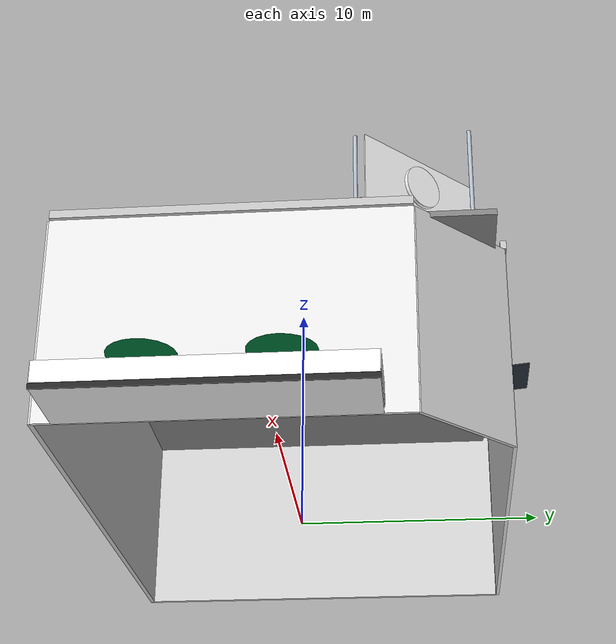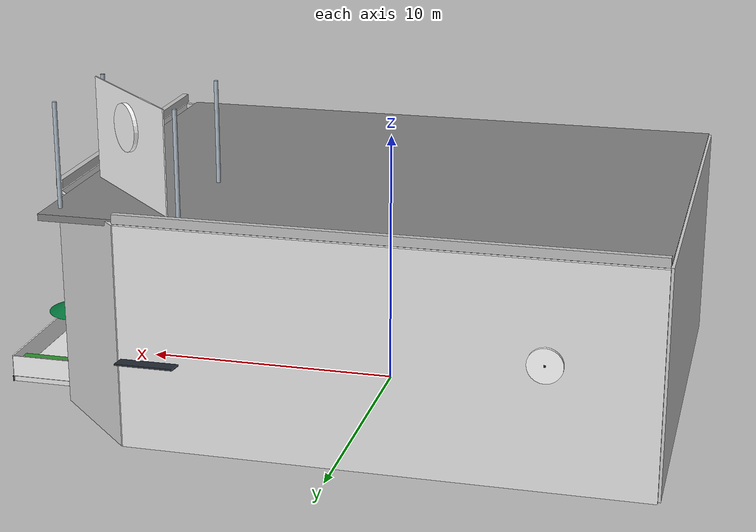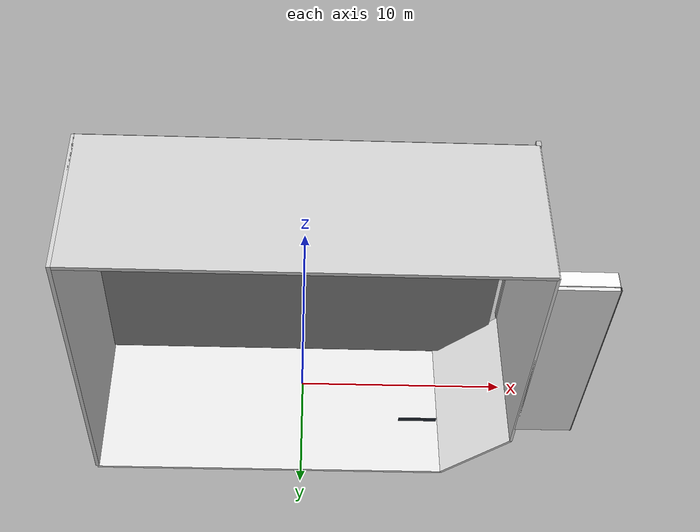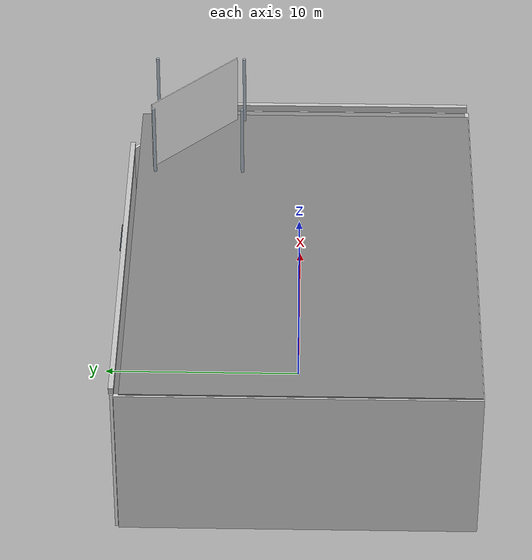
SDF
<?xml version="1.0" ?>
<sdf version="1.8">
  <model name="starbucks_building">
    <static>true</static>
    <link name="building_link">

      <!-- ==================== 1. 簡化剛體碰撞 (High-Performance Collisions) ==================== -->
      <!-- 主建物主體碰撞體 -->
      <collision name="main_bldg_col">
        <pose>-1.5 -1.5 4.25 0 0 0</pose>
        <geometry>
          <box>
            <size>20.0 14.5 8.5</size>
          </box>
        </geometry>
      </collision>

      <!-- 戶外露天木棧平台碰撞體 (可供行人與機器人行走) -->
      <collision name="terrace_deck_col">
        <pose>13.0 -2.0 0.1 0 0 0</pose>
        <geometry>
          <box>
            <size>3.0 12.0 0.2</size>
          </box>
        </geometry>
        <surface>
          <friction>
            <ode>
              <mu>0.8</mu>
              <mu2>0.8</mu2>
            </ode>
          </friction>
        </surface>
      </collision>

      <!-- ==================== 2. 主建物外牆與高解析實景貼圖 (Real Photo Facades) ==================== -->
      <!-- (A) 臨關新路立面 (West Facade: 雙扇推門、陳列大櫥窗、STARBUCKS黑橫幅、黑木護牆板、2F Bagel網球遮陽棚) -->
      <visual name="west_facade_vis">
        <pose>-1.75 8.75 4.25 0 0 0</pose>
        <geometry>
          <box>
            <size>19.5 0.15 8.5</size>
          </box>
        </geometry>
        <material>
          <diffuse>0.9 0.9 0.9 1</diffuse>
          <pbr>
            <metal>
              <albedo_map>model://starbucks_building/materials/textures/sbux_west_facade.png</albedo_map>
              <roughness>0.4</roughness>
              <metalness>0.1</metalness>
            </metal>
          </pbr>
        </material>
      </visual>

      <!-- (B) 臨關新二街立面 (North Facade: 連續落地大玻璃窗、STARBUCKS黑條紋看板、2F Bagel網球工作室遮陽棚) -->
      <visual name="north_facade_vis">
        <pose>11.5 -1.75 4.25 0 0 0</pose>
        <geometry>
          <box>
            <size>0.15 14.0 8.5</size>
          </box>
        </geometry>
        <material>
          <diffuse>0.9 0.9 0.9 1</diffuse>
          <pbr>
            <metal>
              <albedo_map>model://starbucks_building/materials/textures/sbux_north_facade.png</albedo_map>
              <roughness>0.4</roughness>
              <metalness>0.1</metalness>
            </metal>
          </pbr>
        </material>
      </visual>

      <!-- (C) 45度導角轉角立面 (45-degree Chamfered Corner: 抿石子轉角立柱與黑底銅邊飾條) -->
      <visual name="corner_chamfer_vis">
        <pose>9.75 7.0 4.25 0 0 -0.785398</pose>
        <geometry>
          <box>
            <size>4.95 0.15 8.5</size>
          </box>
        </geometry>
        <material>
          <diffuse>0.85 0.85 0.85 1</diffuse>
          <pbr>
            <metal>
              <albedo_map>model://starbucks_building/materials/textures/sbux_corner_chamfer.png</albedo_map>
              <roughness>0.5</roughness>
            </metal>
          </pbr>
        </material>
      </visual>

      <!-- (D) 門口上方輕型金屬雨遮 (Entrance Canopy) -->
      <visual name="entrance_canopy">
        <pose>6.8 8.95 3.45 0.1 0 0</pose>
        <geometry>
          <box>
            <size>2.2 1.1 0.06</size>
          </box>
        </geometry>
        <material>
          <ambient>0.1 0.12 0.15 0.9</ambient>
          <diffuse>0.15 0.18 0.22 0.9</diffuse>
        </material>
      </visual>

      <!-- (E) 南側緊鄰康是美隔牆 (South Wall bordering Cosmed) -->
      <visual name="south_wall_vis">
        <pose>-11.5 -0.1 4.25 0 0 0</pose>
        <geometry>
          <box>
            <size>0.2 17.5 8.5</size>
          </box>
        </geometry>
        <material>
          <diffuse>0.8 0.8 0.8 1</diffuse>
          <pbr>
            <metal>
              <albedo_map>model://starbucks_building/materials/textures/sbux_pebble_concrete.png</albedo_map>
              <roughness>0.7</roughness>
            </metal>
          </pbr>
        </material>
      </visual>

      <!-- (F) 東側後方背牆 (East Rear Wall facing Back Alley) -->
      <visual name="east_rear_wall_vis">
        <pose>0 -8.75 4.25 0 0 0</pose>
        <geometry>
          <box>
            <size>23.0 0.2 8.5</size>
          </box>
        </geometry>
        <material>
          <diffuse>0.8 0.8 0.8 1</diffuse>
          <pbr>
            <metal>
              <albedo_map>model://starbucks_building/materials/textures/sbux_pebble_concrete.png</albedo_map>
              <roughness>0.7</roughness>
            </metal>
          </pbr>
        </material>
      </visual>

      <!-- (G) 屋頂樓板與女兒牆 (Rooftop Slab & Parapet) -->
      <visual name="roof_slab">
        <pose>-0.25 -0.2 8.45 0 0 0</pose>
        <geometry>
          <box>
            <size>22.5 17.2 0.25</size>
          </box>
        </geometry>
        <material>
          <ambient>0.45 0.45 0.45 1</ambient>
          <diffuse>0.5 0.5 0.5 1</diffuse>
        </material>
      </visual>
      <visual name="roof_parapet_w">
        <pose>-1.75 8.75 8.75 0 0 0</pose>
        <geometry>
          <box>
            <size>19.5 0.25 0.35</size>
          </box>
        </geometry>
        <material>
          <diffuse>0.75 0.75 0.75 1</diffuse>
          <pbr>
            <metal>
              <albedo_map>model://starbucks_building/materials/textures/sbux_pebble_concrete.png</albedo_map>
            </metal>
          </pbr>
        </material>
      </visual>
      <visual name="roof_parapet_n">
        <pose>11.5 -1.75 8.75 0 0 0</pose>
        <geometry>
          <box>
            <size>0.25 14.0 0.35</size>
          </box>
        </geometry>
        <material>
          <diffuse>0.75 0.75 0.75 1</diffuse>
          <pbr>
            <metal>
              <albedo_map>model://starbucks_building/materials/textures/sbux_pebble_concrete.png</albedo_map>
            </metal>
          </pbr>
        </material>
      </visual>

      <!-- ==================== 3. 臨關新路側懸星巴克雙尾美人魚圓形標誌 (Mounted Siren Medallion) ==================== -->
      <visual name="siren_sign_arm">
        <pose>-7.5 8.9 4.8 0 0 0</pose>
        <geometry>
          <box>
            <size>0.08 0.35 0.08</size>
          </box>
        </geometry>
        <material>
          <ambient>0.1 0.1 0.1 1</ambient>
          <diffuse>0.15 0.15 0.15 1</diffuse>
        </material>
      </visual>
      <visual name="siren_medallion_disc">
        <pose>-7.5 9.0 4.8 1.5707963 0 0</pose>
        <geometry>
          <cylinder>
            <radius>0.65</radius>
            <length>0.12</length>
          </cylinder>
        </geometry>
        <material>
          <diffuse>1 1 1 1</diffuse>
          <emissive>0.0 0.45 0.22 1</emissive>
          <pbr>
            <metal>
              <albedo_map>model://starbucks_building/materials/textures/sbux_siren_logo.png</albedo_map>
              <roughness>0.3</roughness>
            </metal>
          </pbr>
        </material>
      </visual>

      <!-- ==================== 4. 北側關新二街木棧露天座與木柵圍欄 (Outdoor Terrace & Wood Slats Fence) ==================== -->
      <!-- 戶外木棧地板 (Timber Deck) -->
      <visual name="terrace_deck_vis">
        <pose>13.0 -2.0 0.1 0 0 0</pose>
        <geometry>
          <box>
            <size>3.0 12.0 0.2</size>
          </box>
        </geometry>
        <material>
          <diffuse>0.9 0.9 0.9 1</diffuse>
          <pbr>
            <metal>
              <albedo_map>model://starbucks_building/materials/textures/sbux_wood_deck.png</albedo_map>
              <roughness>0.6</roughness>
            </metal>
          </pbr>
        </material>
      </visual>

      <!-- 黑色金屬基座圍邊 (Black Metal Edge Beam) -->
      <visual name="terrace_edge_beam">
        <pose>14.52 -2.0 0.1 0 0 0</pose>
        <geometry>
          <box>
            <size>0.06 12.05 0.22</size>
          </box>
        </geometry>
        <material>
          <ambient>0.1 0.1 0.1 1</ambient>
          <diffuse>0.15 0.15 0.15 1</diffuse>
        </material>
      </visual>

      <!-- 木柵格欄杆主圍牆 (外側臨關新二街, Slat Fence Outer) -->
      <visual name="terrace_fence_outer">
        <pose>14.5 -2.0 0.65 0 0 0</pose>
        <geometry>
          <box>
            <size>0.06 12.0 0.85</size>
          </box>
        </geometry>
        <material>
          <diffuse>0.95 0.95 0.95 1</diffuse>
          <pbr>
            <metal>
              <albedo_map>model://starbucks_building/materials/textures/sbux_terrace_fence.png</albedo_map>
              <roughness>0.5</roughness>
            </metal>
          </pbr>
        </material>
      </visual>

      <!-- 木柵格欄杆北側側圍 (Slat Fence North End) -->
      <visual name="terrace_fence_north">
        <pose>13.0 4.0 0.65 0 0 0</pose>
        <geometry>
          <box>
            <size>3.0 0.06 0.85</size>
          </box>
        </geometry>
        <material>
          <diffuse>0.95 0.95 0.95 1</diffuse>
          <pbr>
            <metal>
              <albedo_map>model://starbucks_building/materials/textures/sbux_terrace_fence.png</albedo_map>
              <roughness>0.5</roughness>
            </metal>
          </pbr>
        </material>
      </visual>

      <!-- 木柵格欄杆南側側圍 (Slat Fence South End) -->
      <visual name="terrace_fence_south">
        <pose>13.0 -8.0 0.65 0 0 0</pose>
        <geometry>
          <box>
            <size>3.0 0.06 0.85</size>
          </box>
        </geometry>
        <material>
          <diffuse>0.95 0.95 0.95 1</diffuse>
          <pbr>
            <metal>
              <albedo_map>model://starbucks_building/materials/textures/sbux_terrace_fence.png</albedo_map>
              <roughness>0.5</roughness>
            </metal>
          </pbr>
        </material>
      </visual>

      <!-- 露天座深木色景觀植栽槽 (North Planter Box) -->
      <visual name="planter_box_north">
        <pose>13.0 3.6 0.45 0 0 0</pose>
        <geometry>
          <box>
            <size>2.6 0.5 0.5</size>
          </box>
        </geometry>
        <material>
          <diffuse>0.85 0.85 0.85 1</diffuse>
          <pbr>
            <metal>
              <albedo_map>model://starbucks_building/materials/textures/sbux_dark_wood.png</albedo_map>
            </metal>
          </pbr>
        </material>
      </visual>
      <visual name="planter_plants_north">
        <pose>13.0 3.6 0.8 0 0 0</pose>
        <geometry>
          <box>
            <size>2.4 0.4 0.35</size>
          </box>
        </geometry>
        <material>
          <ambient>0.15 0.5 0.15 1</ambient>
          <diffuse>0.18 0.58 0.18 1</diffuse>
        </material>
      </visual>

      <!-- 露天咖啡座圓桌與遮陽傘 1 -->
      <visual name="cafe_table_1">
        <pose>13.0 -4.5 0.75 0 0 0</pose>
        <geometry>
          <cylinder>
            <radius>0.45</radius>
            <length>0.04</length>
          </cylinder>
        </geometry>
        <material>
          <ambient>0.2 0.15 0.1 1</ambient>
          <diffuse>0.25 0.2 0.15 1</diffuse>
        </material>
      </visual>
      <visual name="table_pole_1">
        <pose>13.0 -4.5 0.38 0 0 0</pose>
        <geometry>
          <cylinder>
            <radius>0.03</radius>
            <length>0.72</length>
          </cylinder>
        </geometry>
        <material>
          <ambient>0.1 0.1 0.1 1</ambient>
          <diffuse>0.15 0.15 0.15 1</diffuse>
        </material>
      </visual>
      <visual name="parasol_1">
        <pose>13.0 -4.5 2.2 0 0 0</pose>
        <geometry>
          <cone>
            <radius>1.3</radius>
            <length>0.6</length>
          </cone>
        </geometry>
        <material>
          <ambient>0.0 0.35 0.18 1</ambient>
          <diffuse>0.0 0.45 0.22 1</diffuse>
        </material>
      </visual>

      <!-- 露天咖啡座圓桌與遮陽傘 2 -->
      <visual name="cafe_table_2">
        <pose>13.0 0.5 0.75 0 0 0</pose>
        <geometry>
          <cylinder>
            <radius>0.45</radius>
            <length>0.04</length>
          </cylinder>
        </geometry>
        <material>
          <ambient>0.2 0.15 0.1 1</ambient>
          <diffuse>0.25 0.2 0.15 1</diffuse>
        </material>
      </visual>
      <visual name="table_pole_2">
        <pose>13.0 0.5 0.38 0 0 0</pose>
        <geometry>
          <cylinder>
            <radius>0.03</radius>
            <length>0.72</length>
          </cylinder>
        </geometry>
        <material>
          <ambient>0.1 0.1 0.1 1</ambient>
          <diffuse>0.15 0.15 0.15 1</diffuse>
        </material>
      </visual>
      <visual name="parasol_2">
        <pose>13.0 0.5 2.2 0 0 0</pose>
        <geometry>
          <cone>
            <radius>1.3</radius>
            <length>0.6</length>
          </cone>
        </geometry>
        <material>
          <ambient>0.0 0.35 0.18 1</ambient>
          <diffuse>0.0 0.45 0.22 1</diffuse>
        </material>
      </visual>

      <!-- ==================== 5. 屋頂鋼構廣告架與高聳美人魚圓形標誌 (Rooftop Steel Truss & Siren) ==================== -->
      <!-- 鋼構桁架實景透明貼圖主平面 (Facing Northwest Intersection) -->
      <visual name="roof_truss_plane">
        <pose>8.5 5.5 10.5 0 0 -0.785398</pose>
        <geometry>
          <box>
            <size>6.0 0.05 4.0</size>
          </box>
        </geometry>
        <material>
          <diffuse>1 1 1 1</diffuse>
          <pbr>
            <metal>
              <albedo_map>model://starbucks_building/materials/textures/sbux_roof_truss.png</albedo_map>
              <roughness>0.3</roughness>
            </metal>
          </pbr>
        </material>
      </visual>

      <!-- 桁架4根鍍鋅鋼立柱 (Steel Posts) -->
      <visual name="truss_post_1">
        <pose>6.0 3.0 10.5 0 0 0</pose>
        <geometry>
          <cylinder>
            <radius>0.08</radius>
            <length>4.0</length>
          </cylinder>
        </geometry>
        <material>
          <ambient>0.6 0.65 0.7 1</ambient>
          <diffuse>0.7 0.75 0.8 1</diffuse>
        </material>
      </visual>
      <visual name="truss_post_2">
        <pose>10.5 3.0 10.5 0 0 0</pose>
        <geometry>
          <cylinder>
            <radius>0.08</radius>
            <length>4.0</length>
          </cylinder>
        </geometry>
        <material>
          <ambient>0.6 0.65 0.7 1</ambient>
          <diffuse>0.7 0.75 0.8 1</diffuse>
        </material>
      </visual>
      <visual name="truss_post_3">
        <pose>6.0 7.5 10.5 0 0 0</pose>
        <geometry>
          <cylinder>
            <radius>0.08</radius>
            <length>4.0</length>
          </cylinder>
        </geometry>
        <material>
          <ambient>0.6 0.65 0.7 1</ambient>
          <diffuse>0.7 0.75 0.8 1</diffuse>
        </material>
      </visual>
      <visual name="truss_post_4">
        <pose>10.5 7.5 10.5 0 0 0</pose>
        <geometry>
          <cylinder>
            <radius>0.08</radius>
            <length>4.0</length>
          </cylinder>
        </geometry>
        <material>
          <ambient>0.6 0.65 0.7 1</ambient>
          <diffuse>0.7 0.75 0.8 1</diffuse>
        </material>
      </visual>

      <!-- 鋼桁架頂部斜面高聳圓形美人魚徽標 (Elevated Rooftop Siren Logo Disc) -->
      <visual name="roof_siren_medallion">
        <pose>8.6 5.6 11.2 1.5707963 0 -0.785398</pose>
        <geometry>
          <cylinder>
            <radius>0.9</radius>
            <length>0.16</length>
          </cylinder>
        </geometry>
        <material>
          <diffuse>1 1 1 1</diffuse>
          <emissive>0.0 0.5 0.25 1</emissive>
          <pbr>
            <metal>
              <albedo_map>model://starbucks_building/materials/textures/sbux_siren_logo.png</albedo_map>
              <roughness>0.3</roughness>
            </metal>
          </pbr>
        </material>
      </visual>

    </link>
  </model>
</sdf>
